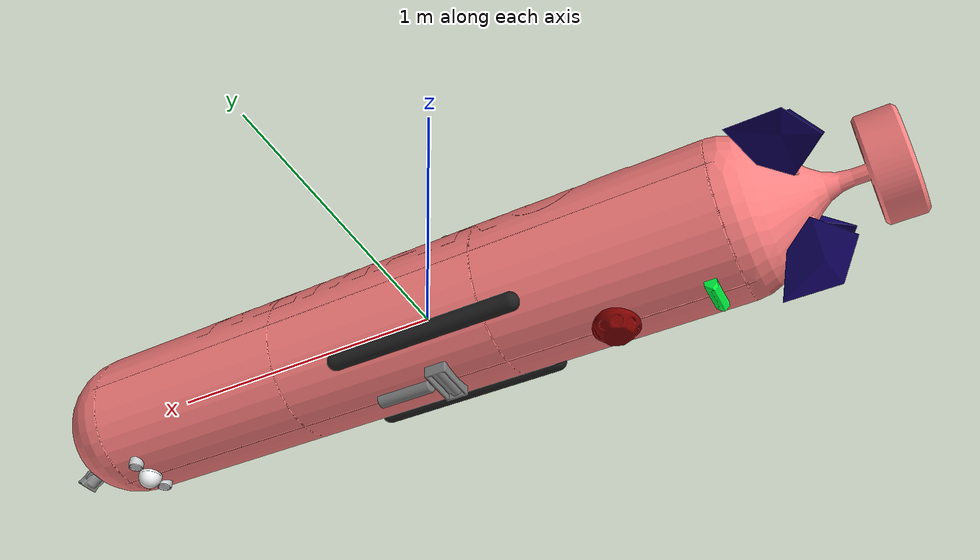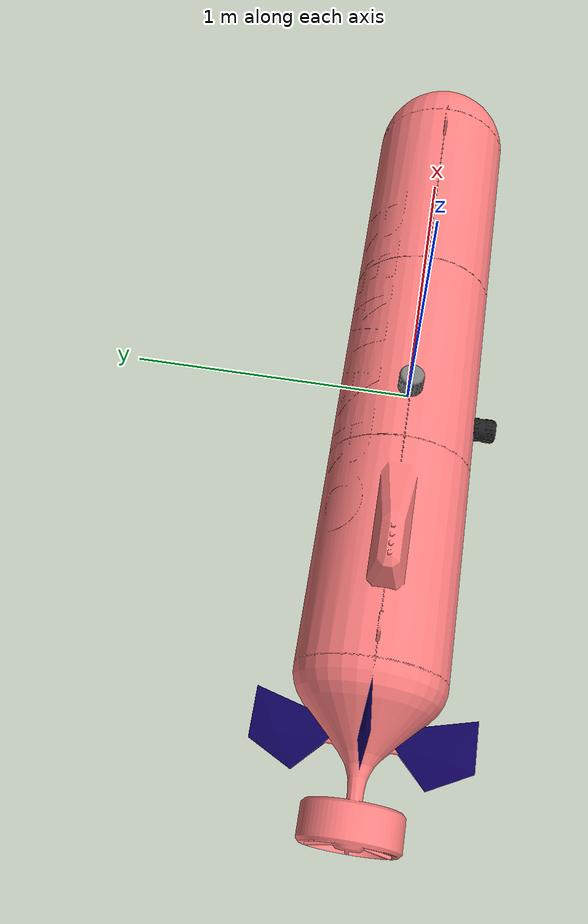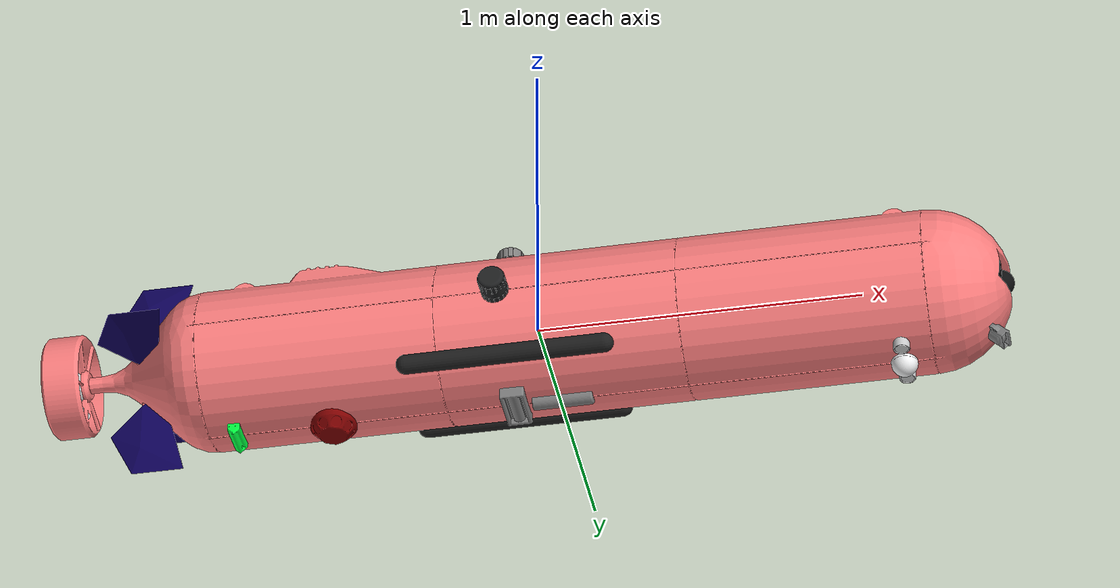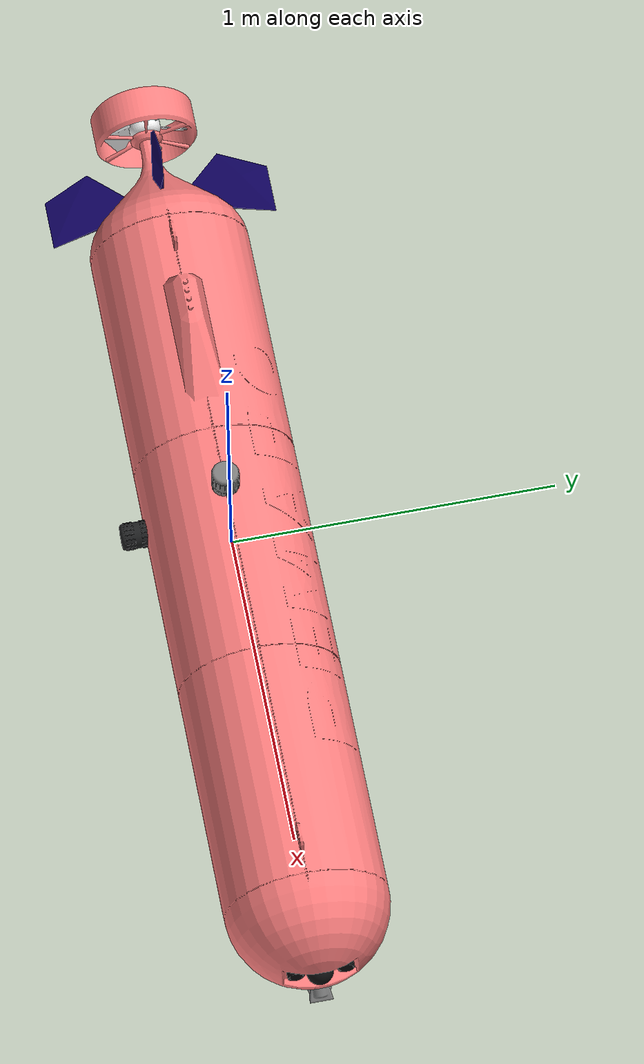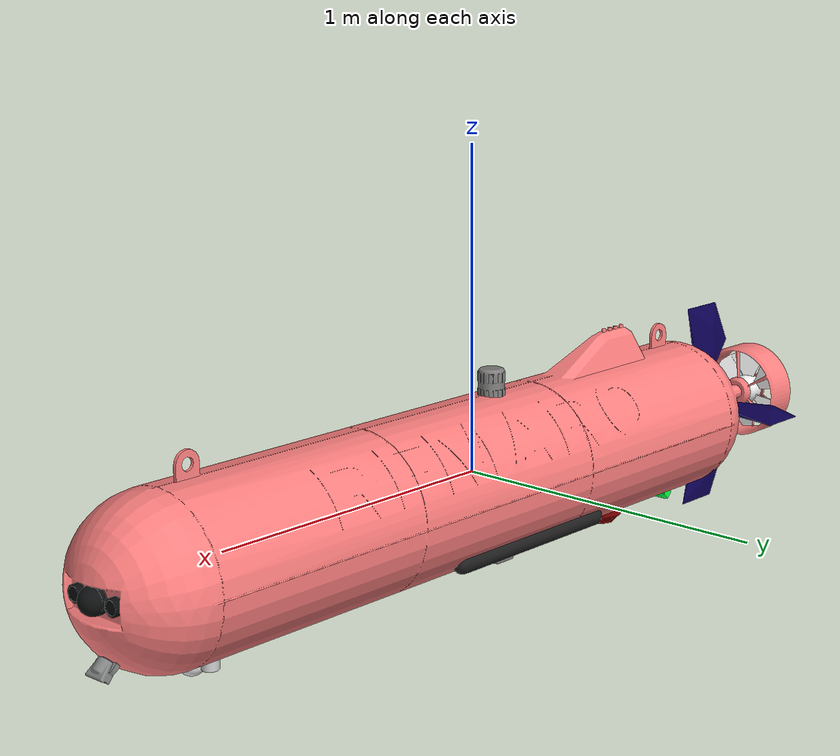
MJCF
<mujoco model="remaro">
    <compiler angle="radian" meshdir="/home/dodonkor/mujoco_ws/src/remaro_package/model/remaro/meshes/"/>
    <size njmax="500" nconmax="100"/>
    <default/>
    <asset>
        <mesh name="base.000" file="base.000.stl"/>
        <mesh name="cam_bottom.000" file="cam_bottom.000.stl"/>
        <mesh name="cam_front.000" file="cam_front.000.stl"/>
        <mesh name="dvl.000" file="dvl.000.stl"/>
        <mesh name="fin_pair_h.000" file="fin_pair_h.000.stl"/>
        <mesh name="fin_pair_v.000" file="fin_pair_v.000.stl"/>
        <mesh name="fls.000" file="fls.000.stl"/>
        <mesh name="laser.000" file="laser.000.stl"/>
        <mesh name="light_pair_bottom.000" file="light_pair_bottom.000.stl"/>
        <mesh name="light_pair_front.000" file="light_pair_front.000.stl"/>
        <mesh name="mbes.000" file="mbes.000.stl"/>
        <mesh name="prop.000" file="prop.000.stl"/>
        <mesh name="scanner_side.000" file="scanner_side.000.stl"/>
        <mesh name="scanner_top.000" file="scanner_top.000.stl"/>
        <mesh name="sss_left.000" file="sss_left.000.stl"/>
        <mesh name="sss_right.000" file="sss_right.000.stl"/>
    </asset>
    <worldbody>
        <body name="remaro">
            <geom pos="-0.00055 1e-05 -5e-05" type="mesh" rgba="1 0.50196 0.50196 1" mesh="base.000"/>
            <geom pos="1.11613 0 -0.27587" type="mesh" rgba="0.93726 0.94118 0.9451 1" mesh="cam_bottom.000"/>
            <geom pos="1.4231 -0.00323 -0.0191" type="mesh" rgba="0.05882 0.06274 0.06667 1" mesh="cam_front.000"/>
            <geom pos="-0.63433 0 -0.27529" type="mesh" rgba="0.49804 0 0 1" mesh="dvl.000"/>
            <geom pos="1.39819 0 -0.2032" type="mesh" rgba="0.51372 0.51765 0.51765 1" mesh="fls.000"/>
            <geom pos="-0.93634 0 -0.27155" type="mesh" rgba="0 1 0.25098 1" mesh="laser.000"/>
            <geom pos="1.11609 0 -0.25373" type="mesh" rgba="0.78824 0.79216 0.79608 1" mesh="light_pair_bottom.000"/>
            <geom pos="1.40625 0 -0.01758" type="mesh" rgba="0.04314 0.04706 0.05098 1" mesh="light_pair_front.000"/>
            <geom pos="-0.00074 0 -0.2658" type="mesh" rgba="0.49804 0.49804 0.49804 1" mesh="mbes.000"/>
            <geom pos="-0.08613 -0.27032 -0.01727" type="mesh" rgba="0.12549 0.12941 0.13333 1" mesh="scanner_side.000"/>
            <geom pos="-0.08613 0 0.25305" type="mesh" rgba="0.50196 0.49804 0.49412 1" mesh="scanner_top.000"/>
            <geom pos="-0.07144 0.1711 -0.1976" type="mesh" rgba="0.12157 0.12157 0.12157 1" mesh="sss_left.000"/>
            <geom pos="-0.07144 -0.17086 -0.19741" type="mesh" rgba="0.12157 0.12157 0.12157 1" mesh="sss_right.000"/>
            <body name="link_fin_pair_h" pos="-1.23634 -0.00191 -0.01932">
                <inertial pos="0 0 0" quat="0.5 0.5 -0.5 0.5" mass="0.961" diaginertia="0.72155 0.69678 0.02607"/>
                <joint name="joint_fin_pair_h" pos="0 0 0" axis="0 1 0" limited="true" range="-1.08 1.08"/>
                <geom pos="-0.00073 0 0" type="mesh" rgba="0.05098 0 0.34902 1" mesh="fin_pair_h.000"/>
            </body>
            <body name="link_fin_pair_v" pos="-1.23631 0 -0.01932" quat="0.707105 0.707108 0 0">
                <inertial pos="0 0 0" quat="0.707107 0 0 0.707107" mass="0.961" diaginertia="0.89248 0.86184 0.03224"/>
                <joint name="joint_fin_pair_v" pos="0 0 0" axis="0 1 0" limited="true" range="-1.08 1.08"/>
                <geom pos="-0.00077 0 0" quat="0.707105 -0.707108 0 0" type="mesh" rgba="0.05098 0 0.34902 1" mesh="fin_pair_v.000"/>
            </body>
            <body name="link_prop" pos="-1.48074 0 -0.01932" quat="0.707105 0 0 0.707108">
                <inertial pos="0 0 0" mass="0.961" diaginertia="0.0036 0.0021 0.0021"/>
                <joint name="joint_prop" pos="0 0 0" axis="0 1 0"/>
                <geom pos="0 -0.00054 0" quat="0.707105 0 0 -0.707108" type="mesh" rgba="0.95686 0.95686 0.95686 1" mesh="prop.000"/>
            </body>
        </body>
    </worldbody>
    <equality/>
</mujoco>
